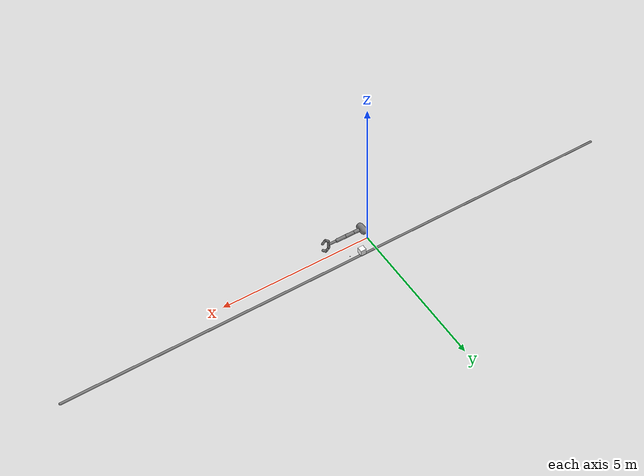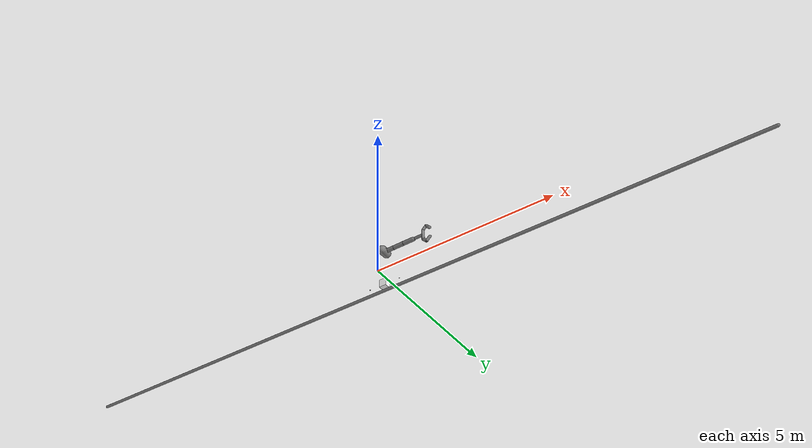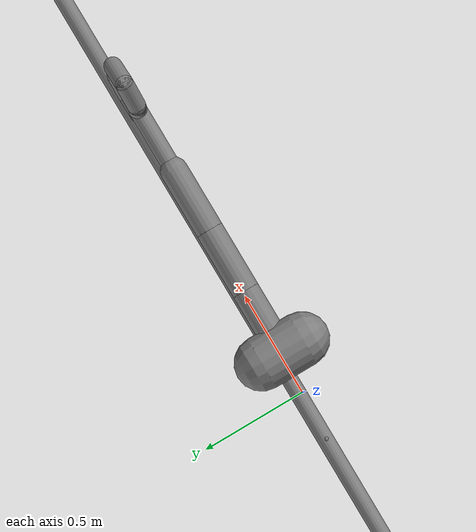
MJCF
<mujoco model="arm3d">
  <compiler inertiafromgeom="true" angle="radian" coordinate="local" />
  <option timestep="0.01" gravity="0 0 -1" iterations="20" integrator="Euler" />

  <default>
    <joint armature='0.04' damping="1" limited="true"/>
    <geom friction=".8 .1 .1" density="300" margin="0.002" condim="1" contype="1" conaffinity="1"/>
  </default>

  <worldbody>
    <body name="palm" pos="0.2 0 0.55">
      <geom type="capsule" fromto="0 -0.1 0 0 0.1 0" size="0.12"/>

      <body name="proximal_1" pos="0 0 0">
        <joint name="proximal_j_1" type="hinge" pos="0 0 0" axis="0 1 0" range="-2.5236 2.3963" damping="1.0" />
        <geom type="capsule"  fromto="0 0 0 0.3 0 0" size="0.06" contype="1" conaffinity="1"/>
        <body name="distal_1" pos="0.3 0 0">
          <joint name="distal_j_1" type="hinge" pos="0 0 0" axis="0 1 0" range="-2.3213 2.3" damping="1.0"/>
          <geom type="capsule"  fromto="0 0 0 0.3 0 0" size="0.06" contype="1" conaffinity="1"/>
          <body name="distal_2" pos="0.3 0 0">
            <joint name="distal_j_2" type="hinge" pos="0 0 0" axis="0 1 0" range="-2.3213 2.3" damping="1.0"/>
            <geom type="capsule" fromto="0 0 0 0.3 0 0" size="0.06" contype="1" conaffinity="1"/>
            <body name="distal_3" pos="0.3 0 0">
              <joint name="distal_j_3" type="hinge" pos="0 0 0" axis="0 1 0" range="-2.3213 2.3" damping="1.0"/>
              <geom type="capsule" fromto="0 0 0 0.3 0 0" size="0.04" contype="1" conaffinity="1"/>
              <body name="distal_4" pos="0.3 0 0">
                <geom type="capsule" fromto="0 0 -0.15 0 0 0.15" size="0.04" contype="1" conaffinity="1" />
		<body name="gripper1" pos="0 0 -0.15">
		  <joint name="gripper1" type="hinge" pos="0 0 0" axis="0 1 0" range="-0.3 0." damping="1.0"/>
		  <site name="gripper1" pos="0.2 0. 0.0" size="0.01" />
                  <geom type="capsule" fromto="0 0 0 0.1 0 -0.1" size="0.04" contype="1" conaffinity="1" condim="3"/>
                  <geom type="capsule" fromto="0.1 0 -0.1 0.2 0 0" size="0.04" contype="1" conaffinity="1" condim="3"/>
		</body>
		<body name="gripper2" pos="0 0 0.15">
		  <site name="gripper2" pos="0.2 0. 0.0" size="0.01" />
                  <geom type="capsule" fromto="0 0 0 0.1 0 0.1" size="0.04" contype="1" conaffinity="1" condim="3"/>
                  <geom type="capsule" fromto="0.1 0 0.1 0.2 0 0" size="0.04" contype="1" conaffinity="1" condim="3"/>
                </body>
              </body>
            </body>
          </body>
        </body>
      </body>
    </body>
    <body name="object" pos=".2 0.0 -.51">
      <geom rgba="1. 1. 1. 1" type="box" size="0.098 0.098 0.11" density='10' contype="1" conaffinity="1"/>
      <joint name="obj_slidez" type="slide" pos="0.1 0.05 0.05" axis="0 0 1" range="-10.3213 10.3" damping="0.1"/>
      <joint name="obj_slidex" type="slide" pos="0.05 0.05 0.05" axis="1 0 0" range="-10.3213 10.3" damping="0.5"/>
      <joint name="obj_rot" type="hinge" pos="0 0 0" axis="0 1 0" range="-5 5" damping="1.0" />
      <site name="obj1" pos="-0.45 0.0 0.0" size="0.01" />
      <site name="obj2" pos="0.45 0.0 0.0" size="0.01" />
    </body>

    <body name="floor" pos="0 0 -0.71">
      <geom type="capsule" fromto="-10 0 0. 10 0 0." size="0.04" contype="1" conaffinity="1" condim="3" />
    </body>

  </worldbody>
  <actuator>
    <motor joint="proximal_j_1" ctrlrange="-2 2" ctrllimited="true"/>
    <motor joint="distal_j_1" ctrlrange="-2 2" ctrllimited="true"/>
    <motor joint="distal_j_2" ctrlrange="-2 2" ctrllimited="true"/>
    <motor joint="distal_j_3" ctrlrange="-2 2" ctrllimited="true"/>
    <motor joint="gripper1" ctrlrange="-3 3" ctrllimited="true"/>

  </actuator>
</mujoco>
